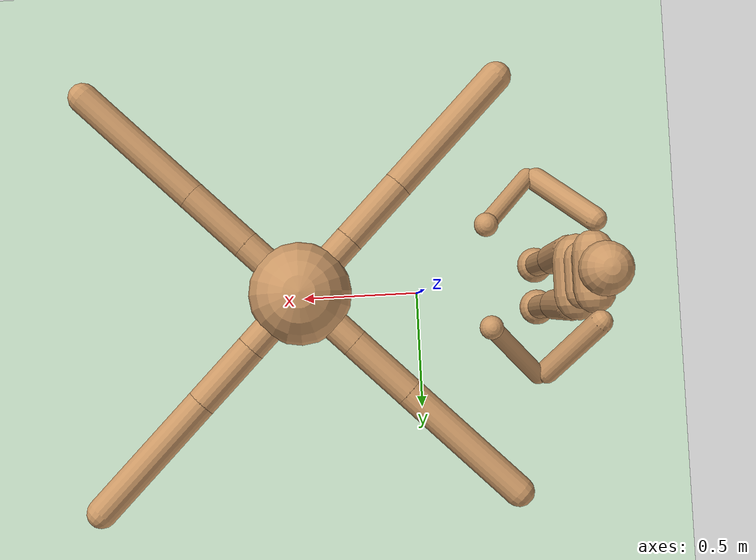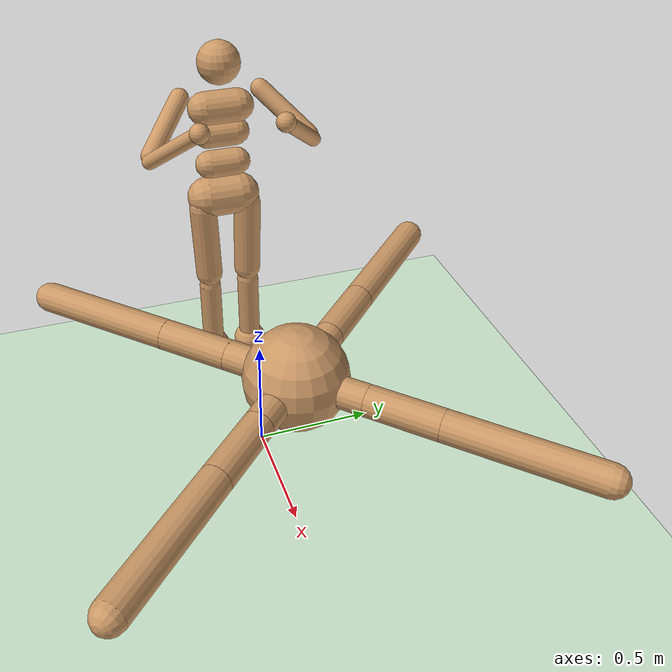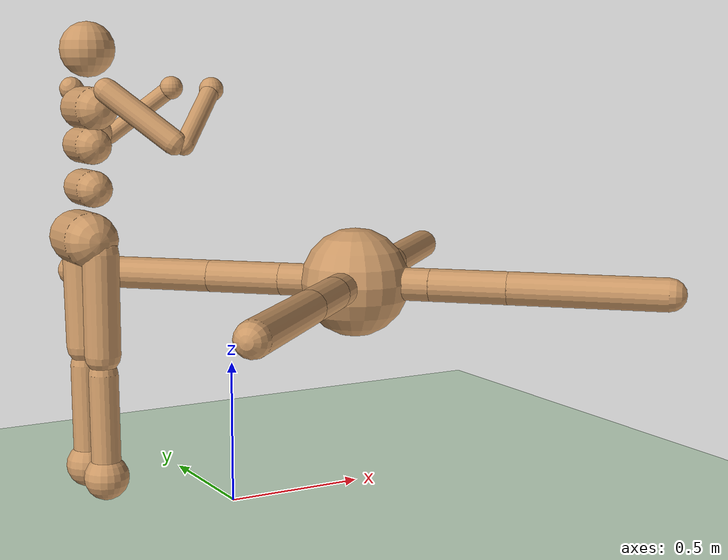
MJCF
<mujoco model="humanoid">
    <compiler angle="degree" inertiafromgeom="true"/>
    <custom>
      <numeric data="0.0 0.0 0.55 1.0 0.0 0.0 0.0 0.0 1.0 0.0 -1.0 0.0 -1.0 0.0 1.0" name="init_qpos"/>
    </custom>
    <default>
        <joint armature="1" damping="1" limited="true"/>
        <geom conaffinity="1" condim="1" contype="1" margin="0.001" material="geom" rgba="0.8 0.6 .4 1"/>
        <motor ctrllimited="true" ctrlrange="-.4 .4"/>
    </default>
    <option integrator="RK4" iterations="50" solver="PGS" timestep="0.003">
    </option>
    <size nkey="5" nuser_geom="1"/>
    <visual>
        <map fogend="5" fogstart="3"/>
    </visual>
    <asset>
        <texture builtin="gradient" height="100" rgb1=".4 .5 .6" rgb2="0 0 0" type="skybox" width="100"/>
        <texture builtin="flat" height="1278" mark="cross" markrgb="1 1 1" name="texgeom" random="0.01" rgb1="0.8 0.6 0.4" rgb2="0.8 0.6 0.4" type="cube" width="127"/>
        <texture builtin="checker" height="100" name="texplane" rgb1="0 0 0" rgb2="0.8 0.8 0.8" type="2d" width="100"/>
        <material name="MatPlane" reflectance="0.5" shininess="1" specular="1" texrepeat="60 60" texture="texplane"/>
        <material name="geom" texture="texgeom" texuniform="true"/>
    </asset>
    <worldbody>
        <light cutoff="100" diffuse="1 1 1" dir="-0 0 -1.3" directional="true" exponent="1" pos="0 0 1.3" specular=".1 .1 .1"/>
        <geom condim="3" friction="1 .1 .1" material="MatPlane" name="floor" pos="0 0 0" rgba="0.8 0.9 0.8 1" size="20 20 0.125" type="plane"/>
        <body name="torso" pos="-0.5 0 1.4">
            <joint armature="0" damping="0" limited="false" name="root" pos="0 0 0" stiffness="0" type="free"/>
            <geom fromto="0 -.07 0 0 .07 0" name="torso1" size="0.07" type="capsule"/>
            <geom name="head" pos="0 0 .19" size=".09" type="sphere" user="258"/>
            <geom fromto="-.01 -.06 -.12 -.01 .06 -.12" name="uwaist" size="0.06" type="capsule"/>
            <body name="lwaist" pos="-.01 0 -0.260" quat="1.000 0 -0.002 0">
                <geom fromto="0 -.06 0 0 .06 0" name="lwaist" size="0.06" type="capsule"/>
                <joint armature="0.02" axis="0 0 1" damping="5" name="abdomen_z" pos="0 0 0.065" range="-45 45" stiffness="20" type="hinge"/>
                <joint armature="0.02" axis="0 1 0" damping="5" name="abdomen_y" pos="0 0 0.065" range="-75 30" stiffness="10" type="hinge"/>
                <body name="pelvis" pos="0 0 -0.165" quat="1.000 0 -0.002 0">
                    <joint armature="0.02" axis="1 0 0" damping="5" name="abdomen_x" pos="0 0 0.1" range="-35 35" stiffness="10" type="hinge"/>
                    <geom fromto="-.02 -.07 0 -.02 .07 0" name="butt" size="0.09" type="capsule"/>
                    <body name="right_thigh" pos="0 -0.1 -0.04">
                        <joint armature="0.01" axis="1 0 0" damping="5" name="right_hip_x" pos="0 0 0" range="-25 5" stiffness="10" type="hinge"/>
                        <joint armature="0.01" axis="0 0 1" damping="5" name="right_hip_z" pos="0 0 0" range="-60 35" stiffness="10" type="hinge"/>
                        <joint armature="0.0080" axis="0 1 0" damping="5" name="right_hip_y" pos="0 0 0" range="-110 20" stiffness="20" type="hinge"/>
                        <geom fromto="0 0 0 0 0.01 -.34" name="right_thigh1" size="0.06" type="capsule"/>
                        <body name="right_shin" pos="0 0.01 -0.403">
                            <joint armature="0.0060" axis="0 -1 0" name="right_knee" pos="0 0 .02" range="-160 -2" type="hinge"/>
                            <geom fromto="0 0 0 0 0 -.3" name="right_shin1" size="0.049" type="capsule"/>
                            <body name="right_foot" pos="0 0 -0.45">
                                <geom name="right_foot" pos="0 0 0.1" size="0.075" type="sphere" user="0"/>
                            </body>
                        </body>
                    </body>
                    <body name="left_thigh" pos="0 0.1 -0.04">
                        <joint armature="0.01" axis="-1 0 0" damping="5" name="left_hip_x" pos="0 0 0" range="-25 5" stiffness="10" type="hinge"/>
                        <joint armature="0.01" axis="0 0 -1" damping="5" name="left_hip_z" pos="0 0 0" range="-60 35" stiffness="10" type="hinge"/>
                        <joint armature="0.01" axis="0 1 0" damping="5" name="left_hip_y" pos="0 0 0" range="-120 20" stiffness="20" type="hinge"/>
                        <geom fromto="0 0 0 0 -0.01 -.34" name="left_thigh1" size="0.06" type="capsule"/>
                        <body name="left_shin" pos="0 -0.01 -0.403">
                            <joint armature="0.0060" axis="0 -1 0" name="left_knee" pos="0 0 .02" range="-160 -2" stiffness="1" type="hinge"/>
                            <geom fromto="0 0 0 0 0 -.3" name="left_shin1" size="0.049" type="capsule"/>
                            <body name="left_foot" pos="0 0 -0.45">
                                <geom name="left_foot" type="sphere" size="0.075" pos="0 0 0.1" user="0" />
                            </body>
                        </body>
                    </body>
                </body>
            </body>
            <body name="right_upper_arm" pos="0 -0.17 0.06">
                <joint armature="0.0068" axis="2 1 1" name="right_shoulder1" pos="0 0 0" range="-85 60" stiffness="1" type="hinge"/>
                <joint armature="0.0051" axis="0 -1 1" name="right_shoulder2" pos="0 0 0" range="-85 60" stiffness="1" type="hinge"/>
                <geom fromto="0 0 0 .16 -.16 -.16" name="right_uarm1" size="0.04 0.16" type="capsule"/>
                <body name="right_lower_arm" pos=".18 -.18 -.18">
                    <joint armature="0.0028" axis="0 -1 1" name="right_elbow" pos="0 0 0" range="-90 50" stiffness="0" type="hinge"/>
                    <geom fromto="0.01 0.01 0.01 .17 .17 .17" name="right_larm" size="0.031" type="capsule"/>
                    <geom name="right_hand" pos=".18 .18 .18" size="0.04" type="sphere"/>
                    <camera pos="0 0 0"/>
                </body>
            </body>
            <body name="left_upper_arm" pos="0 0.17 0.06">
                <joint armature="0.0068" axis="2 -1 1" name="left_shoulder1" pos="0 0 0" range="-60 85" stiffness="1" type="hinge"/>
                <joint armature="0.0051" axis="0 1 1" name="left_shoulder2" pos="0 0 0" range="-60 85" stiffness="1" type="hinge"/>
                <geom fromto="0 0 0 .16 .16 -.16" name="left_uarm1" size="0.04 0.16" type="capsule"/>
                <body name="left_lower_arm" pos=".18 .18 -.18">
                    <joint armature="0.0028" axis="0 -1 -1" name="left_elbow" pos="0 0 0" range="-90 50" stiffness="0" type="hinge"/>
                    <geom fromto="0.01 -0.01 0.01 .17 -.17 .17" name="left_larm" size="0.031" type="capsule"/>
                    <geom name="left_hand" pos=".18 -.18 .18" size="0.04" type="sphere"/>
                </body>
            </body>
        </body>
    <body name="ant" pos="0.5 0.0 0.75">
      <geom name="torso_geom" pos="0 0 0" size="0.2" type="sphere"/>
      <joint armature="0" damping="0" limited="false" margin="0.01" name="antroot" pos="0 0 0" type="free"/>
      <body name="front_left_leg" pos="0 0 0">
        <geom fromto="0.0 0.0 0.0 0.2 0.2 0.0" name="aux_1_geom" size="0.06" type="capsule"/>
        <body name="aux_1" pos="0.2 0.2 0">
          <joint axis="0 0 1" name="hip_1" pos="0.0 0.0 0.0" range="-30 30" type="hinge"/>
          <geom fromto="0.0 0.0 0.0 0.2 0.2 0.0" name="left_leg_geom" size="0.06" type="capsule"/>
          <body pos="0.2 0.2 0">
            <joint axis="-1 1 0" name="ankle_1" pos="0.0 0.0 0.0" range="30 70" type="hinge"/>
            <geom fromto="0.0 0.0 0.0 0.4 0.4 0.0" name="left_ankle_geom" size="0.06" type="capsule"/>
          </body>
        </body>
      </body>
      <body name="front_right_leg" pos="0 0 0">
        <geom fromto="0.0 0.0 0.0 -0.2 0.2 0.0" name="aux_2_geom" size="0.06" type="capsule"/>
        <body name="aux_2" pos="-0.2 0.2 0">
          <joint axis="0 0 1" name="hip_2" pos="0.0 0.0 0.0" range="-30 30" type="hinge"/>
          <geom fromto="0.0 0.0 0.0 -0.2 0.2 0.0" name="right_leg_geom" size="0.06" type="capsule"/>
          <body pos="-0.2 0.2 0">
            <joint axis="1 1 0" name="ankle_2" pos="0.0 0.0 0.0" range="-70 -30" type="hinge"/>
            <geom fromto="0.0 0.0 0.0 -0.4 0.4 0.0" name="right_ankle_geom" size="0.06" type="capsule"/>
          </body>
        </body>
      </body>
      <body name="back_leg" pos="0 0 0">
        <geom fromto="0.0 0.0 0.0 -0.2 -0.2 0.0" name="aux_3_geom" size="0.06" type="capsule"/>
        <body name="aux_3" pos="-0.2 -0.2 0">
          <joint axis="0 0 1" name="hip_3" pos="0.0 0.0 0.0" range="-30 30" type="hinge"/>
          <geom fromto="0.0 0.0 0.0 -0.2 -0.2 0.0" name="back_leg_geom" size="0.06" type="capsule"/>
          <body pos="-0.2 -0.2 0">
            <joint axis="-1 1 0" name="ankle_3" pos="0.0 0.0 0.0" range="-70 -30" type="hinge"/>
            <geom fromto="0.0 0.0 0.0 -0.4 -0.4 0.0" name="third_ankle_geom" size="0.06" type="capsule"/>
          </body>
        </body>
      </body>
      <body name="right_back_leg" pos="0 0 0">
        <geom fromto="0.0 0.0 0.0 0.2 -0.2 0.0" name="aux_4_geom" size="0.06" type="capsule"/>
        <body name="aux_4" pos="0.2 -0.2 0">
          <joint axis="0 0 1" name="hip_4" pos="0.0 0.0 0.0" range="-30 30" type="hinge"/>
          <geom fromto="0.0 0.0 0.0 0.2 -0.2 0.0" name="rightback_leg_geom" size="0.06" type="capsule"/>
          <body pos="0.2 -0.2 0">
            <joint axis="1 1 0" name="ankle_4" pos="0.0 0.0 0.0" range="30 70" type="hinge"/>
            <geom fromto="0.0 0.0 0.0 0.4 -0.4 0.0" name="fourth_ankle_geom" size="0.06" type="capsule"/>
          </body>
        </body>
      </body>
    </body>
    </worldbody>
    <tendon>
        <fixed name="left_hipknee">
            <joint coef="-1" joint="left_hip_y"/>
            <joint coef="1" joint="left_knee"/>
        </fixed>
        <fixed name="right_hipknee">
            <joint coef="-1" joint="right_hip_y"/>
            <joint coef="1" joint="right_knee"/>
        </fixed>
    </tendon>

    <actuator>
        <motor gear="100" joint="abdomen_y" name="abdomen_y"/>
        <motor gear="100" joint="abdomen_z" name="abdomen_z"/>
        <motor gear="100" joint="abdomen_x" name="abdomen_x"/>
        <motor gear="100" joint="right_hip_x" name="right_hip_x"/>
        <motor gear="100" joint="right_hip_z" name="right_hip_z"/>
        <motor gear="300" joint="right_hip_y" name="right_hip_y"/>
        <motor gear="200" joint="right_knee" name="right_knee"/>
        <motor gear="100" joint="left_hip_x" name="left_hip_x"/>
        <motor gear="100" joint="left_hip_z" name="left_hip_z"/>
        <motor gear="300" joint="left_hip_y" name="left_hip_y"/>
        <motor gear="200" joint="left_knee" name="left_knee"/>
        <motor gear="25" joint="right_shoulder1" name="right_shoulder1"/>
        <motor gear="25" joint="right_shoulder2" name="right_shoulder2"/>
        <motor gear="25" joint="right_elbow" name="right_elbow"/>
        <motor gear="25" joint="left_shoulder1" name="left_shoulder1"/>
        <motor gear="25" joint="left_shoulder2" name="left_shoulder2"/>
        <motor gear="25" joint="left_elbow" name="left_elbow"/>
        <motor ctrllimited="true" ctrlrange="-1.0 1.0" joint="hip_4" gear="150"/>
        <motor ctrllimited="true" ctrlrange="-1.0 1.0" joint="ankle_4" gear="150"/>
        <motor ctrllimited="true" ctrlrange="-1.0 1.0" joint="hip_1" gear="150"/>
        <motor ctrllimited="true" ctrlrange="-1.0 1.0" joint="ankle_1" gear="150"/>
        <motor ctrllimited="true" ctrlrange="-1.0 1.0" joint="hip_2" gear="150"/>
        <motor ctrllimited="true" ctrlrange="-1.0 1.0" joint="ankle_2" gear="150"/>
        <motor ctrllimited="true" ctrlrange="-1.0 1.0" joint="hip_3" gear="150"/>
        <motor ctrllimited="true" ctrlrange="-1.0 1.0" joint="ankle_3" gear="150"/>
    </actuator>
</mujoco>
